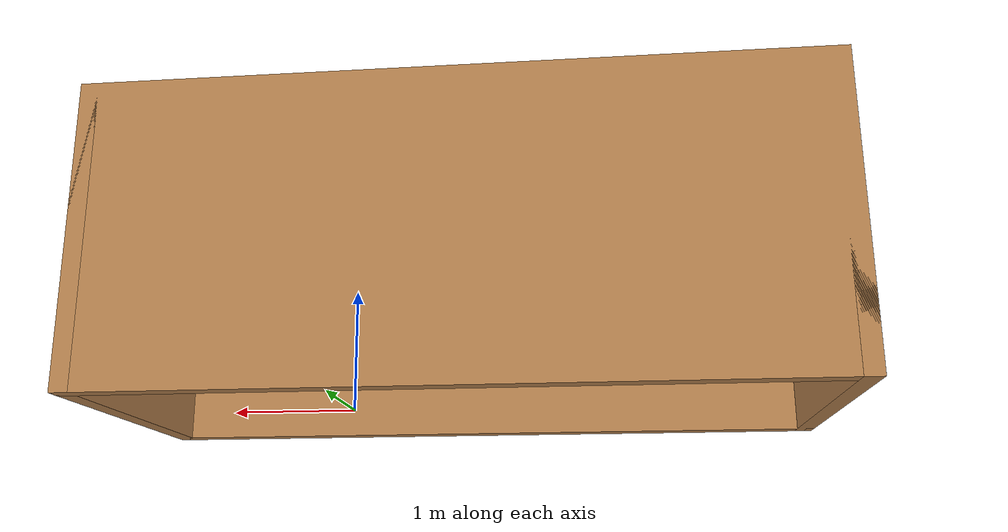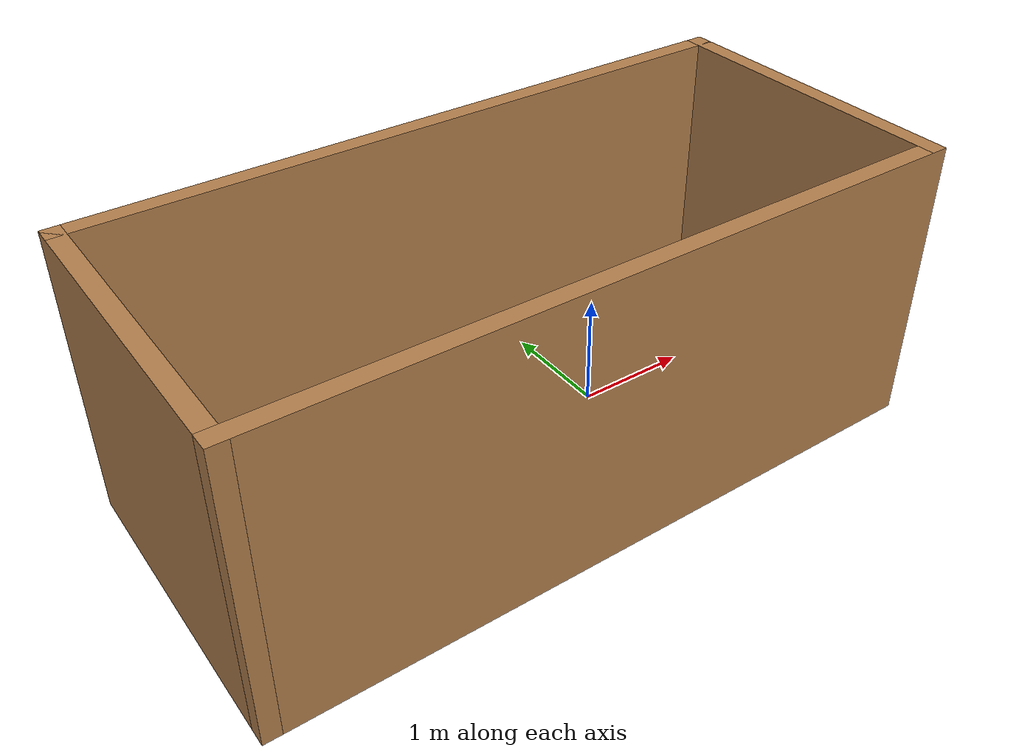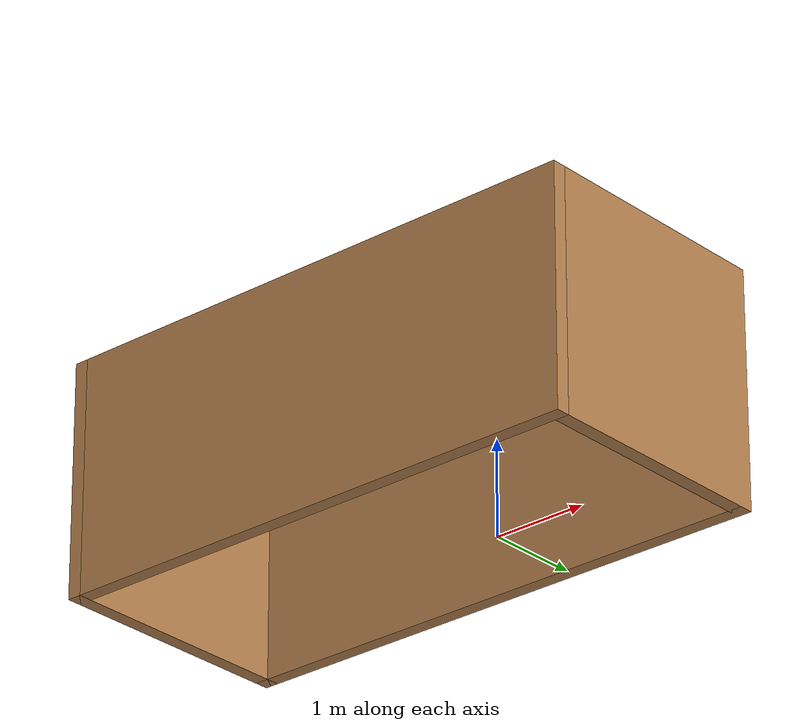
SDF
<?xml version='1.0'?>
<sdf version='1.7'>
  <model name='Untitled'>
    <pose>-0.928862 -0.25193 0 0 -0 0</pose>
    <link name='Wall_5'>
      <collision name='Wall_5_Collision'>
        <geometry>
          <box>
            <size>2.75 0.15 2.5</size>
          </box>
        </geometry>
        <pose>0 0 1.25 0 -0 0</pose>
      </collision>
      <visual name='Wall_5_Visual'>
        <pose>0 0 1.25 0 -0 0</pose>
        <geometry>
          <box>
            <size>2.75 0.15 2.5</size>
          </box>
        </geometry>
        <material>
          <script>
            <uri>file://media/materials/scripts/gazebo.material</uri>
            <name>Gazebo/Wood</name>
          </script>
          <ambient>1 1 1 1</ambient>
        </material>
        <meta>
          <layer>0</layer>
        </meta>
      </visual>
      <pose>-2.925 0 0 0 -0 1.5708</pose>
    </link>
    <link name='Wall_6'>
      <collision name='Wall_6_Collision'>
        <geometry>
          <box>
            <size>6 0.15 2.5</size>
          </box>
        </geometry>
        <pose>0 0 1.25 0 -0 0</pose>
      </collision>
      <visual name='Wall_6_Visual'>
        <pose>0 0 1.25 0 -0 0</pose>
        <geometry>
          <box>
            <size>6 0.15 2.5</size>
          </box>
        </geometry>
        <material>
          <script>
            <uri>file://media/materials/scripts/gazebo.material</uri>
            <name>Gazebo/Wood</name>
          </script>
          <ambient>1 1 1 1</ambient>
        </material>
        <meta>
          <layer>0</layer>
        </meta>
      </visual>
      <pose>0 1.3 0 0 -0 0</pose>
    </link>
    <link name='Wall_7'>
      <collision name='Wall_7_Collision'>
        <geometry>
          <box>
            <size>2.75 0.15 2.5</size>
          </box>
        </geometry>
        <pose>0 0 1.25 0 -0 0</pose>
      </collision>
      <visual name='Wall_7_Visual'>
        <pose>0 0 1.25 0 -0 0</pose>
        <geometry>
          <box>
            <size>2.75 0.15 2.5</size>
          </box>
        </geometry>
        <material>
          <script>
            <uri>file://media/materials/scripts/gazebo.material</uri>
            <name>Gazebo/Wood</name>
          </script>
          <ambient>1 1 1 1</ambient>
        </material>
        <meta>
          <layer>0</layer>
        </meta>
      </visual>
      <pose>2.925 0 0 0 -0 -1.5708</pose>
    </link>
    <link name='Wall_8'>
      <collision name='Wall_8_Collision'>
        <geometry>
          <box>
            <size>6 0.15 2.5</size>
          </box>
        </geometry>
        <pose>0 0 1.25 0 -0 0</pose>
      </collision>
      <visual name='Wall_8_Visual'>
        <pose>0 0 1.25 0 -0 0</pose>
        <geometry>
          <box>
            <size>6 0.15 2.5</size>
          </box>
        </geometry>
        <material>
          <script>
            <uri>file://media/materials/scripts/gazebo.material</uri>
            <name>Gazebo/Wood</name>
          </script>
          <ambient>1 1 1 1</ambient>
        </material>
        <meta>
          <layer>0</layer>
        </meta>
      </visual>
      <pose>0 -1.3 0 0 -0 3.14159</pose>
    </link>
    <static>1</static>
  </model>
</sdf>
